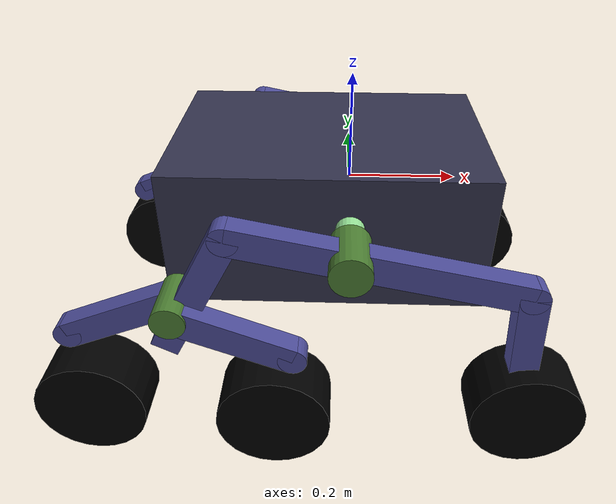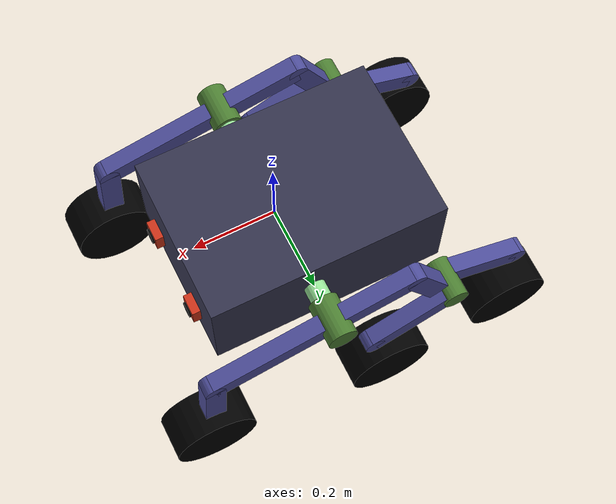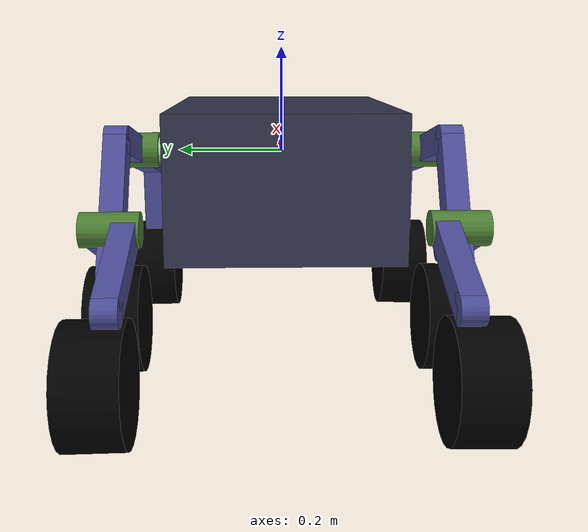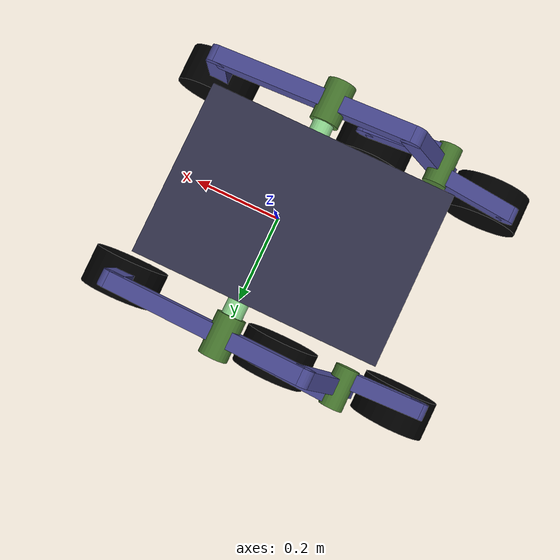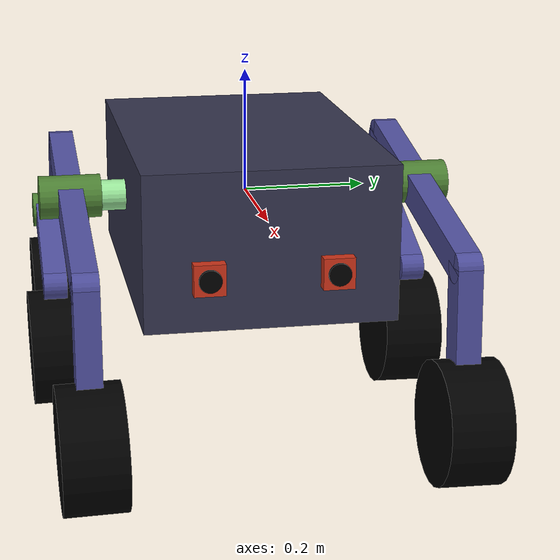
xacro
<?xml version="1.0"?>
<robot xmlns:xacro="http://www.ros.org/wiki/xacro" name="rover">

    <gazebo>
        <plugin name="gazebo_ros_control" filename="libgazebo_ros_pkgs.so">
            <robotNamespace>rover</robotNamespace>
        </plugin>
    </gazebo>

    <xacro:include filename="rocker-bogie/__rocker-bogie.xacro"/>
    <xacro:include filename="base/__base.xacro"/>

</robot>

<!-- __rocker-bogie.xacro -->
<robot xmlns:xacro="http://www.ros.org/wiki/xacro" name="rocker-bogie">

<!-- INCLUDED FILES -->
    <xacro:include filename="rocker/__rocker.xacro"/>
    <xacro:include filename="bogie/__bogie.xacro"/>
    <xacro:include filename="suspension_beam.xacro"/>
    <xacro:include filename="wheel.xacro"/>

<!-- PROPERIES -->
    <!-- SUSPENSION PROPERTIES-->
    <xacro:property name="suspension_width" value=".580"/>

    <xacro:property name="bogie_x" value="-.292"/>
    <xacro:property name="bogie_y" value=" .000"/>
    <xacro:property name="bogie_z" value="-.100"/>

    <xacro:property name="wheel_f_x" value=" .319"/>
    <xacro:property name="wheel_f_y" value=" .000"/>
    <xacro:property name="wheel_f_z" value="-.305"/>

    <xacro:property name="wheel_m_x" value=" .165"/>
    <xacro:property name="wheel_m_y" value=" .020"/>
    <xacro:property name="wheel_m_z" value="-.205"/>

    <xacro:property name="wheel_b_x" value="-.165"/>
    <xacro:property name="wheel_b_y" value="0"/>
    <xacro:property name="wheel_b_z" value="-.205"/>

    <!-- WHEELS POSITIONS -->
    <xacro:property name="wheel_base_f" value=".550"/>
    <xacro:property name="wheel_base_m" value=".600"/>
    <xacro:property name="wheel_base_b" value=".500"/>

    <xacro:property name="h_wheel" value=".250"/>
    <xacro:property name="l_wheel_f" value=".305"/>

    <!-- CUSTOM SIM PROPS -->
    <xacro:property name="h_bogie" value=".170"/>
    <xacro:property name="l_bogie" value=".305"/>
    <xacro:property name="l_wheel_m" value=".200"/>
    <xacro:property name="l_wheel_b" value=".200"/>

    <!-- ELEMENTS DIAMETERS -->
    <xacro:property name="suspension_beam_length" value=".600"/>
    <xacro:property name="suspension_beam_radius" value=".025"/>

    <xacro:property name="rocker_bearing_length" value=".100"/>
    <xacro:property name="rocker_bearing_radius" value=".035"/>

    <xacro:property name="bogie_bearing_length" value=".100"/>
    <xacro:property name="bogie_bearing_radius" value=".030"/>

    <xacro:property name="wheel_width" value=".100"/>
    <xacro:property name="wheel_radius" value=".100"/>

<!-- RELATIVE VARIABLES -->
    <xacro:property name="f_wheel_deviation" value="${(wheel_base_f - wheel_base_m)/2}"/>
    <xacro:property name="b_wheel_deviation" value="${(wheel_base_b - wheel_base_m)/2}"/>
    <xacro:property name="wheel_offset" value=".100"/>

<!-- MAIN LINK -->
    <xacro:suspension_beam name="suspension_beam"/>

<!-- SUSPENSION -->
    <xacro:rocker name="rocker_l" parent="suspension_beam" x="0" y="${suspension_width/2}"    z="0" side="1"/>  <!-- 1 = left -->
    <xacro:rocker name="rocker_r" parent="suspension_beam" x="0" y="${-suspension_width/2}"    z="0" side="-1"/> <!-- -1 = right -->

    <xacro:bogie name="bogie_l" parent="rocker_l_bearing" x="${bogie_x}" y="${bogie_y}"  z="${bogie_z}" side="1"/>
    <xacro:bogie name="bogie_r" parent="rocker_r_bearing" x="${bogie_x}" y="${bogie_y}"  z="${bogie_z}" side="-1"/>

<!-- WHEELS -->
    <xacro:wheel name="fl" parent="rocker_l_bearing" x="${wheel_f_x}" y="${+wheel_f_y}"  z="${wheel_f_z}" side="1"/>
    <xacro:wheel name="fr" parent="rocker_r_bearing" x="${wheel_f_x}" y="${-wheel_f_y}"  z="${wheel_f_z}" side="-1"/>

    <xacro:wheel name="ml" parent="bogie_l_bearing"  x="${wheel_m_x}" y="${+wheel_m_y}"  z="${wheel_m_z}" side="1"/>
    <xacro:wheel name="mr" parent="bogie_r_bearing"  x="${wheel_m_x}" y="${-wheel_m_y}"  z="${wheel_m_z}" side="-1"/>

    <xacro:wheel name="bl" parent="bogie_l_bearing"  x="${wheel_b_x}" y="${+wheel_b_y}"  z="${wheel_b_z}" side="1"/>
    <xacro:wheel name="br" parent="bogie_r_bearing"  x="${wheel_b_x}" y="${-wheel_b_y}"  z="${wheel_b_z}" side="-1"/>

<!-- MY DIFFERENTIAL PLUGIN -->
    <gazebo>
        <plugin name="differential_pid" filename="libDifferentialPID.so">
            <leftJoint>rocker_l_bearing_joint</leftJoint>
            <rightJoint>rocker_r_bearing_joint</rightJoint>
            <topic>/rover/differential_pid</topic>
            <Kp>1000</Kp>
            <Ki>0</Ki>
            <Kd>3000</Kd>
            <limit>10000</limit>
        </plugin>
    </gazebo>

</robot>

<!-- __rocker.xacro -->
<robot xmlns:xacro="http://www.ros.org/wiki/xacro" name="rocker">

<!-- INCLUDE -->
    <xacro:include filename="rocker_bearing.xacro"/>
    <xacro:include filename="rocker_link1.xacro"/>
    <xacro:include filename="rocker_link2.xacro"/>
    <xacro:include filename="rocker_link3.xacro"/>
    <xacro:include filename="rocker_link_diff.xacro"/>

<!-- PROPERTIES -->
    <xacro:property name="rocker_link1_length"      value=".500"/>
    <xacro:property name="rocker_link1_width"       value=".040"/>
    <xacro:property name="rocker_link1_height"      value=".050"/>
    <xacro:property name="rocker_link1_x"            value=".000"/>
    <xacro:property name="rocker_link1_y"            value=".000"/>
    <xacro:property name="rocker_link1_z"            value=".000"/>
    <xacro:property name="rocker_link1_offset_x"    value=".050"/>
    <xacro:property name="rocker_link1_offset_y"    value=".000"/>
    <xacro:property name="rocker_link1_offset_z"    value=".000"/>
    <xacro:property name="rocker_link1_pitch"        value="-.2"/>

    <xacro:property name="rocker_link2_length"      value=".250"/>
    <xacro:property name="rocker_link2_width"       value=".040"/>
    <xacro:property name="rocker_link2_height"      value=".050"/>
    <xacro:property name="rocker_link2_x"            value="${-rocker_link1_length/2+rocker_link1_offset_x}"/>
    <xacro:property name="rocker_link2_y"            value=".000"/>
    <xacro:property name="rocker_link2_z"            value=".000"/>
    <xacro:property name="rocker_link2_offset_x"    value="${-rocker_link2_length/2}"/>
    <xacro:property name="rocker_link2_offset_y"    value=".000"/>
    <xacro:property name="rocker_link2_offset_z"    value=".000"/>
    <xacro:property name="rocker_link2_pitch"        value="1.28"/>

    <xacro:property name="rocker_link3_length"      value=".190"/>
    <xacro:property name="rocker_link3_width"       value=".040"/>
    <xacro:property name="rocker_link3_height"      value=".050"/>
    <xacro:property name="rocker_link3_x"            value="${rocker_link1_length/2+rocker_link1_offset_x}"/>
    <xacro:property name="rocker_link3_y"            value=".000"/>
    <xacro:property name="rocker_link3_z"            value=".000"/>
    <xacro:property name="rocker_link3_offset_x"    value="${rocker_link3_length/2}"/>
    <xacro:property name="rocker_link3_offset_y"    value=".000"/>
    <xacro:property name="rocker_link3_offset_z"    value=".000"/>
    <xacro:property name="rocker_link3_pitch"        value="-1.31"/>

    <xacro:property name="link_diff_lenght" value=".100"/>
    <xacro:property name="link_diff_radius" value=".005"/>

<!-- LINKS -->

    <xacro:macro name="rocker" params="name parent x y z side">

        <xacro:rocker_bearing name="${name}_bearing" parent="${parent}" x="${x}" y="${y}" z="${z}" side="${side}"/>

        <xacro:rocker_link1 name="${name}_link1" parent="${name}_bearing"
            x="${rocker_link1_x}" y="${-rocker_link1_y}"  z="${rocker_link1_z}"
            pitch="${-rocker_link1_pitch}"/>

        <xacro:rocker_link2 name="${name}_link2" parent="${name}_link1"
            x="${rocker_link2_x}" y="${-rocker_link2_y}"  z="${rocker_link2_z}"
            pitch="${-rocker_link2_pitch}"/>

        <xacro:rocker_link3 name="${name}_link3" parent="${name}_link1"
            x="${rocker_link3_x}" y="${-rocker_link3_y}"  z="${rocker_link3_z}"
            pitch="${-rocker_link3_pitch}"/>

    </xacro:macro>
</robot>

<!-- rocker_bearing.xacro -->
<robot xmlns:xacro="http://www.ros.org/wiki/xacro" name="rocker">

<!-- GEOMETRY -->
    <xacro:macro name="rocker_geometry">
        <origin rpy="1.57075 0 0"/>
        <geometry>
            <cylinder length="${rocker_bearing_length}" radius="${rocker_bearing_radius}"/>
        </geometry>
    </xacro:macro>

<!-- MATERIAL -->
    <xacro:macro name="rocker_material">
        <material name="dark_green">
            <color rgba=".3 .5 .2 1"/>
        </material>
    </xacro:macro>

<!-- LINK -->
    <xacro:macro name="rocker_bearing" params="name parent x y z side">
        <link name="${name}">
            <visual>
                <xacro:rocker_geometry/>
                <xacro:rocker_material/>
            </visual>
            <collision>
                <xacro:rocker_geometry/>
            </collision>
            <inertial>
                <mass value="3"/>
                <xacro:if value="${side == 1}"> <!-- LEFT-->
                    <origin xyz="0.247725 0.035298 -0.066751" rpy="0 0 0"/>
                    <inertia ixx="0.050813" ixy="0.009439" ixz="-0.021963" iyy="0.135830" iyz="0.004023" izz="0.097893"/>
                </xacro:if>
                <xacro:if value="${side == -1}"> <!-- RIGHT-->
                    <origin xyz="0.247727 -0.035298 -0.066751" rpy="0 0 0"/>
                    <inertia ixx="0.050813" ixy="-0.009439" ixz="-0.021960" iyy="0.135831" iyz="-0.004023" izz="0.097894"/>
                </xacro:if>
            </inertial>
        </link>

            <joint name="${name}_joint" type="revolute">
                <parent link="${parent}"/>
                <child link="${name}"/>
                <origin rpy="0 0 0" xyz="${x} ${y} ${z}"/>
                <axis xyz="0 1 0"/>
                <limit effort="10000" velocity="1" lower="-0.5" upper="0.5"/>
                <dynamics damping="2" friction="0"/>
            </joint>

            <gazebo reference="${name}">
                <mu1> .2 </mu1>
                <mu2> .2 </mu2>
                <material> Gazebo/Grey </material>
                <selfCollide> True </selfCollide>
            </gazebo>

    </xacro:macro>

</robot>

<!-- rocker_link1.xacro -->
<robot xmlns:xacro="http://www.ros.org/wiki/xacro" name="rocker_link1">

<!-- GEOMETRY -->
    <xacro:macro name="rocker_link1_geometry_1">
        <origin rpy="0 0 0" xyz="${rocker_link1_offset_x} ${rocker_link1_offset_y} ${rocker_link1_offset_z}" />
        <geometry>
            <box size="${rocker_link1_length} ${rocker_link1_width} ${rocker_link1_height}"/>
        </geometry>
    </xacro:macro>

    <xacro:macro name="rocker_link1_geometry_2">
        <origin rpy="1.57075 0 0" xyz="${-rocker_link1_length/2+rocker_link1_offset_x} ${rocker_link1_offset_y} ${rocker_link1_offset_z}" />
        <geometry>
            <cylinder length="${rocker_link1_width}" radius="${rocker_link1_height/2}"/>
        </geometry>
    </xacro:macro>

    <xacro:macro name="rocker_link1_geometry_3">
        <origin rpy="1.57075 0 0" xyz="${rocker_link1_length/2+rocker_link1_offset_x} ${rocker_link1_offset_y} ${rocker_link1_offset_z}" />
        <geometry>
            <cylinder length="${rocker_link1_width}" radius="${rocker_link1_height/2}"/>
        </geometry>
    </xacro:macro>

<!-- MATERIAL -->
    <xacro:macro name="rocker_link1_material">
        <material name="light_blue">
            <color rgba=".3 .3 .6 1"/>
        </material>
    </xacro:macro>

<!-- LINK -->
    <xacro:macro name="rocker_link1" params="name parent x y z pitch">
        <link name="${name}">
            <visual>
                <xacro:rocker_link1_geometry_1/>
                <xacro:rocker_link1_material/>
            </visual>
            <visual>
                <xacro:rocker_link1_geometry_2/>
                <xacro:rocker_link1_material/>
            </visual>
            <visual>
                <xacro:rocker_link1_geometry_3/>
                <xacro:rocker_link1_material/>
            </visual>
            <collision>
                <xacro:rocker_link1_geometry_1/>
            </collision>
            <collision>
                <xacro:rocker_link1_geometry_2/>
            </collision>
            <collision>
                <xacro:rocker_link1_geometry_3/>
            </collision>
            <inertial>
                 <origin rpy="0 0 0" xyz="${rocker_link1_offset_x} ${rocker_link1_offset_y} ${rocker_link1_offset_z}" />
                 <mass value="0"/>
                 <inertia ixx="0" ixy="0" ixz="0" iyy="0" iyz="0" izz="0"/>
            </inertial>
        </link>
        <gazebo reference="${name}">
            <mu1> .2 </mu1>
            <mu2> .2 </mu2>
            <material> Gazebo/Blue </material>
            <selfCollide>True</selfCollide>
        </gazebo>

        <joint name="${name}_joint" type="fixed">
            <parent link="${parent}"/>
            <child link="${name}"/>
            <origin rpy="0 ${pitch} 0" xyz="${x} ${y} ${z}"/>
        </joint>

    </xacro:macro>
</robot>

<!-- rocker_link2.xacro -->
<robot xmlns:xacro="http://www.ros.org/wiki/xacro" name="rocker_link2">

<!-- GEOMETRY -->
    <xacro:macro name="rocker_link2_geometry">
        <origin rpy="0 0 0" xyz="${rocker_link2_offset_x} ${rocker_link2_offset_y} ${rocker_link2_offset_z} " />
        <geometry>
            <box size="${rocker_link2_length} ${rocker_link2_width} ${rocker_link2_height}"/>
        </geometry>
    </xacro:macro>

<!-- MATERIAL -->
    <xacro:macro name="rocker_link2_material">
        <material name="light_blue">
            <color rgba=".3 .3 .6 1"/>
        </material>
    </xacro:macro>

<!-- LINK -->
    <xacro:macro name="rocker_link2" params="name parent x y z pitch">
        <link name="${name}">
            <visual>
                <xacro:rocker_link2_geometry/>
                <xacro:rocker_link2_material/>
            </visual>x
            <collision>
                <xacro:rocker_link2_geometry/>
            </collision>
            <inertial>
                 <origin rpy="0 0 0" xyz="${rocker_link2_offset_x} ${rocker_link2_offset_y} ${rocker_link2_offset_z}" />
                 <mass value="0"/>
                 <inertia ixx="0" ixy="0" ixz="0" iyy="0" iyz="0" izz="0"/>
            </inertial>
        </link>
        <gazebo reference="${name}">
            <mu1> .2 </mu1>
            <mu2> .2 </mu2>
            <material> Gazebo/Blue </material>
            <selfCollide>True</selfCollide>
        </gazebo>

        <joint name="${name}_joint" type="fixed">
            <parent link="${parent}"/>
            <child link="${name}"/>
            <origin rpy="0 ${pitch} 0" xyz="${x} ${y} ${z}"/>
        </joint>

    </xacro:macro>
</robot>

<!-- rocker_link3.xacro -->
<robot xmlns:xacro="http://www.ros.org/wiki/xacro" name="rocker_link3">

<!-- GEOMETRY -->
    <xacro:macro name="rocker_link3_geometry_1">
        <origin rpy="0 0 0" xyz="${rocker_link3_offset_x} ${rocker_link3_offset_y} ${rocker_link3_offset_z} " />
        <geometry>
            <box size="${rocker_link3_length} ${rocker_link3_width} ${rocker_link3_height}"/>
        </geometry>
    </xacro:macro>

    <xacro:macro name="rocker_link3_geometry_2">
        <origin rpy="1.57075 0 0" xyz="${rocker_link3_length/2 + rocker_link3_offset_x} ${rocker_link3_offset_y} ${rocker_link3_offset_z}" />
        <geometry>
            <cylinder length="${rocker_link3_width}" radius="${rocker_link3_height/2}"/>
        </geometry>
    </xacro:macro>

<!-- MATERIAL -->
    <xacro:macro name="rocker_link3_material">
        <material name="light_blue">
            <color rgba=".3 .3 .6 1"/>
        </material>
    </xacro:macro>

<!-- LINK -->
    <xacro:macro name="rocker_link3" params="name parent x y z pitch">
        <link name="${name}">
            <visual>
                <xacro:rocker_link3_geometry_1/>
                <xacro:rocker_link3_material/>
            </visual>
            <visual>
                <xacro:rocker_link3_geometry_2/>
                <xacro:rocker_link3_material/>
            </visual>
            <collision>
                <xacro:rocker_link3_geometry_1/>
            </collision>
            <collision>
                <xacro:rocker_link3_geometry_2/>
            </collision>
            <inertial>
                 <origin rpy="0 0 0" xyz="${rocker_link3_offset_x} ${rocker_link3_offset_y} ${rocker_link3_offset_z} " />
                 <mass value="2"/>
                 <inertia ixx=".003" ixy="0.000" ixz="0.000" iyy=".003" iyz="0.000" izz=".003"/>
            </inertial>
        </link>
        <gazebo reference="${name}">
            <mu1> .2 </mu1>
            <mu2> .2 </mu2>
            <material> Gazebo/Blue </material>
            <selfCollide>True</selfCollide>
        </gazebo>

        <joint name="${name}_joint" type="fixed">
            <parent link="${parent}"/>
            <child link="${name}"/>
            <origin rpy="0 ${pitch} 0" xyz="${x} ${y} ${z}"/>
        </joint>

    </xacro:macro>
</robot>

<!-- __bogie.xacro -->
<robot xmlns:xacro="http://www.ros.org/wiki/xacro" name="bogie">

<!-- INCLUDE -->
    <xacro:include filename="bogie_bearing.xacro"/>
    <xacro:include filename="bogie_link1.xacro"/>
    <xacro:include filename="bogie_link2.xacro"/>

<!-- PROPERTIES -->
    <xacro:property name="bogie_link1_length"      value=".215"/>
    <xacro:property name="bogie_link1_width"       value=".040"/>
    <xacro:property name="bogie_link1_height"      value=".050"/>
    <xacro:property name="bogie_link1_x"            value=".000"/>
    <xacro:property name="bogie_link1_y"            value=".000"/>
    <xacro:property name="bogie_link1_z"            value=".000"/>
    <xacro:property name="bogie_link1_offset_x"    value="${bogie_link1_length/2}"/>
    <xacro:property name="bogie_link1_offset_y"    value=".025"/>
    <xacro:property name="bogie_link1_offset_z"    value=".000"/>
    <xacro:property name="bogie_link1_pitch"        value="-0.38"/>

    <xacro:property name="bogie_link2_length"      value=".215"/>
    <xacro:property name="bogie_link2_width"       value=".040"/>
    <xacro:property name="bogie_link2_height"      value=".050"/>
    <xacro:property name="bogie_link2_x"            value=".000"/>
    <xacro:property name="bogie_link2_y"            value=".000"/>
    <xacro:property name="bogie_link2_z"            value=".000"/>
    <xacro:property name="bogie_link2_offset_x"    value="${-bogie_link2_length/2}"/>
    <xacro:property name="bogie_link2_offset_y"    value="-.025"/>
    <xacro:property name="bogie_link2_offset_z"    value=".000"/>
    <xacro:property name="bogie_link2_pitch"        value="0.38"/>

<!-- LINKS -->
    <xacro:macro name="bogie" params="name parent x y z side">

        <xacro:bogie_bearing name="${name}_bearing" parent="${parent}" x="${x}" y="${y}" z="${z}" side="${side}"/>

        <xacro:bogie_link1 name="${name}_link1" parent="${name}_bearing"
            x="${bogie_link1_x}" y="${-bogie_link1_y}"  z="${bogie_link1_z}"
            pitch="${-bogie_link1_pitch}" side="${side}"/>

        <xacro:bogie_link2 name="${name}_link2" parent="${name}_bearing"
            x="${bogie_link2_x}" y="${-bogie_link2_y}"  z="${bogie_link2_z}"
            pitch="${-bogie_link2_pitch}" side="${side}"/>

    </xacro:macro>

</robot>

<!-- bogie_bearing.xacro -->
<robot xmlns:xacro="http://www.ros.org/wiki/xacro" name="bogie_bearing">

<!-- GEOMETRY -->
    <xacro:macro name="bogie_bearing_geometry">
        <origin rpy="1.57075 0 0"/>
        <geometry>
            <cylinder length="${bogie_bearing_length}" radius="${bogie_bearing_radius}"/>
        </geometry>
    </xacro:macro>

<!-- MATERIAL -->
    <xacro:macro name="bogie_bearing_material">
        <material name="dark_green">
            <color rgba=".3 .5 .2 1"/>
        </material>
    </xacro:macro>

<!-- LINK -->
    <xacro:macro name="bogie_bearing" params="name parent x y z side">
        <link name="${name}">
            <visual>
                <xacro:bogie_bearing_geometry/>
                <xacro:bogie_bearing_material/>
            </visual>
            <collision>
                <xacro:bogie_bearing_geometry/>
            </collision>
            <inertial>
                <mass value="6.143721"/>
                <xacro:if value="${side == 1}"> <!-- LEFT-->
                    <origin xyz="-0.000010 0.045682 0.012347" rpy="0 0 0"/>
                    <inertia ixx="0.082737" ixy="0.015401" ixz="-0.000002" iyy="0.236740" iyz="0.013790" izz="0.176983"/>
                </xacro:if>
                <xacro:if value="${side == -1}"> <!-- RIGHT-->
                    <origin xyz="-0.000007 -0.045682 0.012347" rpy="0 0 0"/>
                    <inertia ixx="0.082737" ixy="-0.015402" ixz="0.000003" iyy="0.236740" iyz="-0.013790" izz="0.176983"/>
                </xacro:if>
            </inertial>
        </link>

            <joint name="${name}_joint" type="revolute">
                <parent link="${parent}"/>
                <child link="${name}"/>
                <origin rpy="0 0 0" xyz="${x} ${y} ${z}"/>
                <axis xyz="0 1 0"/>
                <limit effort="1" velocity="1" lower="-0.5" upper="0.5"/>
                <dynamics damping="1"/>
            </joint>

            <gazebo reference="${name}">
                <mu1> .2 </mu1>
                <mu2> .2 </mu2>
                <material> Gazebo/Grey </material>
                <selfCollide> True </selfCollide>
            </gazebo>

            <transmission name="${name}_transmission">
                <type>transmission_interface/SimpleTransmission</type>
                <joint name="${name}_joint">
                    <hardwareInterface>EffortJointInterface</hardwareInterface>
                </joint>
                <actuator name="${name}_motor">
                    <hardwareInterface>EffortJointInterface</hardwareInterface>
                    <mechanicalReduction>1</mechanicalReduction>
                </actuator>
            </transmission>

    </xacro:macro>

</robot>

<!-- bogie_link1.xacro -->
<robot xmlns:xacro="http://www.ros.org/wiki/xacro" name="bogie_link1">

<!-- GEOMETRY -->
    <xacro:macro name="bogie_link1_geometry_1">
        <origin rpy="0 0 0" xyz="${bogie_link1_offset_x} ${bogie_link1_offset_y*side} ${bogie_link1_offset_z}" />
        <geometry>
            <box size="${bogie_link1_length} ${bogie_link1_width} ${bogie_link1_height}"/>
        </geometry>
    </xacro:macro>

    <xacro:macro name="bogie_link1_geometry_2" params="side">
        <origin rpy="1.57075 0 0" xyz="${bogie_link1_length/2 + bogie_link1_offset_x} ${bogie_link1_offset_y*side} ${bogie_link1_offset_z}" />
        <geometry>
            <cylinder length="${bogie_link1_width}" radius="${bogie_link1_height/2}"/>
        </geometry>
    </xacro:macro>

<!-- MATERIAL -->
    <xacro:macro name="bogie_link1_material">
        <material name="light_blue">
            <color rgba=".3 .3 .6 1"/>
        </material>
    </xacro:macro>

<!-- LINK -->
    <xacro:macro name="bogie_link1" params="name parent x y z pitch side">
        <link name="${name}">
            <visual>
                <xacro:bogie_link1_geometry_1/>
                <xacro:bogie_link1_material/>
            </visual>
            <visual>
                <xacro:bogie_link1_geometry_2 side="${side}"/>
                <xacro:bogie_link1_material/>
            </visual>
            <collision>
                <xacro:bogie_link1_geometry_1/>
            </collision>
            <collision>
                <xacro:bogie_link1_geometry_2 side="${side}"/>
            </collision>

            <inertial>
                 <origin rpy="0 0 0" xyz="${bogie_link1_offset_x} ${bogie_link1_offset_y*side} ${bogie_link1_offset_z}" />
                 <mass value="2"/>
                 <inertia ixx=".003" ixy="0.000" ixz="0.000" iyy=".003" iyz="0.000" izz=".003"/>
            </inertial>
        </link>
        <gazebo reference="${name}">
            <mu1> .2 </mu1>
            <mu2> .2 </mu2>
            <material> Gazebo/Blue </material>
            <selfCollide>True</selfCollide>
        </gazebo>

        <joint name="${name}_joint" type="fixed">
            <parent link="${parent}"/>
            <child link="${name}"/>
            <origin rpy="0 ${pitch} 0" xyz="${x} ${y} ${z}"/>
        </joint>

    </xacro:macro>
</robot>

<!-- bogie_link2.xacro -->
<robot xmlns:xacro="http://www.ros.org/wiki/xacro" name="bogie_link2">

<!-- GEOMETRY -->
    <xacro:macro name="bogie_link2_geometry_1">
        <origin rpy="0 0 0" xyz="${bogie_link2_offset_x} ${bogie_link2_offset_y*side} ${bogie_link2_offset_z}" />
        <geometry>
            <box size="${bogie_link2_length} ${bogie_link2_width} ${bogie_link2_height}"/>
        </geometry>
    </xacro:macro>

    <xacro:macro name="bogie_link2_geometry_2" params="side">
        <origin rpy="1.57075 0 0" xyz="${-bogie_link2_length/2 + bogie_link2_offset_x} ${bogie_link2_offset_y*side} ${bogie_link2_offset_z}" />
        <geometry>
            <cylinder length="${bogie_link2_width}" radius="${bogie_link2_height/2}"/>
        </geometry>
    </xacro:macro>

<!-- MATERIAL -->
    <xacro:macro name="bogie_link2_material">
        <material name="light_blue">
            <color rgba=".3 .3 .6 1"/>
        </material>
    </xacro:macro>

<!-- LINK -->
    <xacro:macro name="bogie_link2" params="name parent x y z pitch side">
        <link name="${name}">
            <visual>
                <xacro:bogie_link2_geometry_1/>
                <xacro:bogie_link2_material/>
            </visual>
            <visual>
                <xacro:bogie_link2_geometry_2 side="${side}"/>
                <xacro:bogie_link2_material/>
            </visual>
            <collision>
                <xacro:bogie_link2_geometry_1/>
            </collision>
            <collision>
                <xacro:bogie_link2_geometry_2 side="${side}"/>
            </collision>
            <inertial>
                 <origin rpy="0 0 0" xyz="${bogie_link2_offset_x} ${bogie_link2_offset_y*side} ${bogie_link2_offset_z}" />
                 <mass value="0"/>
                 <inertia ixx="0" ixy="0" ixz="0" iyy="0" iyz="0" izz="0"/>
            </inertial>
        </link>
        <gazebo reference="${name}">
            <mu1> .2 </mu1>
            <mu2> .2 </mu2>
            <material> Gazebo/Blue </material>
            <selfCollide>True</selfCollide>
        </gazebo>

        <joint name="${name}_joint" type="fixed">
            <parent link="${parent}"/>
            <child link="${name}"/>
            <origin rpy="0 ${pitch} 0" xyz="${x} ${y} ${z}"/>
        </joint>

    </xacro:macro>
</robot>

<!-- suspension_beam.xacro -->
<robot xmlns:xacro="http://www.ros.org/wiki/xacro" name="suspension_beam">

<!-- GEOMETRY -->
    <xacro:macro name="suspension_beam_geometry">
        <origin rpy="1.57075 0 0" xyz="0 0 0"/>
        <geometry>
            <cylinder length="${suspension_beam_length}" radius="${suspension_beam_radius}"/>
        </geometry>
    </xacro:macro>

<!-- MATERIAL -->
    <xacro:macro name="suspension_beam_material">
        <material name="light_green">
            <color rgba=".6 .9 .6 1"/>
        </material>
    </xacro:macro>

<!-- LINK -->
    <xacro:macro name="suspension_beam" params="name">

    <!-- DUMMY LINK -->
        <link name="base_link">
        </link>
        <joint name="base_jonit" type="fixed">
            <parent link="base_link"/>
            <child link="${name}"/>
        </joint>

    <!-- MAIN LINK -->
        <link name="${name}">
            <visual>
                <xacro:suspension_beam_geometry/>
                <xacro:suspension_beam_material/>
            </visual>
            <collision>
                <xacro:suspension_beam_geometry/>
            </collision>
            <inertial>
                <mass value="0.001"/>
                <inertia ixx="0.000005" ixy="0" ixz="0" iyy="0.000005" iyz="0" izz="0.000005"/>
            </inertial>
        </link>

        <gazebo reference="base_link">
            <mu1> .2 </mu1>
            <mu2> .2 </mu2>
            <material> Gazebo/Wh </material>
            <selfCollide> True </selfCollide>
        </gazebo>

    </xacro:macro>

</robot>

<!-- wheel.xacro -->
<robot xmlns:xacro="http://www.ros.org/wiki/xacro" name="wheel">

<!-- GEOMETRY -->
    <xacro:macro name="wheel_geometry">
        <origin rpy="1.57075 0 0"/>
        <geometry>
            <cylinder length="${wheel_width}" radius="${wheel_radius}"/>
        </geometry>
    </xacro:macro>

<!-- MATERIAL -->
    <xacro:macro name="wheel_material">
        <material name="black">
            <color rgba=".0 .0 .0 1"/>
        </material>
    </xacro:macro>

<!-- LINK -->
    <xacro:macro name="wheel" params="name parent x y z side">

        <link name="wheel_${name}">
            <visual>
                <xacro:wheel_geometry/>
                <xacro:wheel_material/>
            </visual>
            <collision>
                <xacro:wheel_geometry/>
            </collision>
            <inertial>
                 <mass value="1.67"/>
                 <origin xyz="0 0 0" rpy="0 0 0"/>
                 <inertia ixx=".007228" ixy="0" ixz="0" iyy=".011596" iyz="0" izz=".007228"/>
            </inertial>
        </link>

        <joint name="wheel_${name}_joint" type="continuous">
            <parent link="${parent}"/>
            <child link="wheel_${name}"/>
            <origin rpy="${-side*0.02} 0 0" xyz="${x} ${y} ${z}"/>
            <axis xyz="0 1 0"/>
            <limit effort="100" velocity="10"/>
            <dynamics damping="1"/>
        </joint>

        <gazebo reference="wheel_${name}">
            <mu1 value="0.5"/>
            <mu2 value="0.5"/>
            <material value="Gazebo/Black"/>
            <selfCollide value="True"/>
        </gazebo>

        <gazebo>
            <plugin name="wheel_${name}_joint_limiter" filename="libJointLimiter.so">
                <joint>wheel_${name}_joint</joint>
                <topic>/rover/wheel_${name}_velocity_controller</topic>
                <lower>-9999999</lower>
                <upper>9999999</upper>
            </plugin>
        </gazebo>
        <gazebo>
            <plugin name="wheel_${name}_controller" filename="libControllerPID.so">
                <joint>wheel_${name}_joint</joint>
                <topic>/rover/wheel_${name}_velocity_controller</topic>
                <Kp>2</Kp>
                <Ki>0.1</Ki>
                <Kd>0.1</Kd>
                <limit>100</limit>
            </plugin>
        </gazebo>

    </xacro:macro>
</robot>

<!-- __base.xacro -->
<robot xmlns:xacro="http://www.ros.org/wiki/xacro" name="rover">

<!-- INCLUDED FILES -->
    <xacro:include filename="main_body.xacro"/>
    <xacro:include filename="tower_yaw.xacro"/>
    <xacro:include filename="tower_pitch.xacro"/>
    <xacro:include filename="../sensors/camera.xacro"/>

<!-- PROPERTIES -->

    <xacro:property name="body_length" value=".570"/>
    <xacro:property name="body_width" value=".400"/>
    <xacro:property name="body_height" value=".250"/>

    <xacro:property name="body_translation_x" value="-.040"/>
    <xacro:property name="body_translation_z" value="-.0325"/>

    <xacro:property name="tower_pose_x" value="${-body_length/2 - +0.05}"/>
    <xacro:property name="tower_pose_y" value=".160"/>
    <xacro:property name="tower_pose_z" value="${body_height/2 + tower_yaw_height/2}"/>

    <xacro:property name="tower_yaw_height" value=".400"/>
    <xacro:property name="tower_yaw_radius" value=".025"/>

    <xacro:property name="tower_pitch_length" value=".100"/>
    <xacro:property name="tower_pitch_width" value=".150"/>
    <xacro:property name="tower_pitch_height" value=".050"/>

<!-- BODY -->
    <xacro:main_body name="main_body" parent="suspension_beam" x="${body_translation_x}" y="0" z="${body_translation_z}"/>

<!--TOWER -->

<!-- SENSORS -->
    <xacro:camera_link name="camera1" parent="main_body" x="${body_length/2 + camera_x/2 + body_translation_x}" y=".100" z="-.070" pitch="0"/>
    <xacro:camera_link name="camera2" parent="main_body" x="${body_length/2 + camera_x/2 + body_translation_x}" y="-.100" z="-.070" pitch="0"/>

</robot>

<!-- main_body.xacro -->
<robot xmlns:xacro="http://www.ros.org/wiki/xacro" name="main_body">

<!-- GEOMETRY -->
    <xacro:macro name="main_body_geometry_1">
        <origin rpy="0 0 0" xyz="${x} ${y} ${z}"/>
        <geometry>
            <box size="${body_length} ${body_width} ${body_height}"/>
        </geometry>
    </xacro:macro>

<!-- MATERIAL -->
    <xacro:macro name="main_body_material">
        <material name="dark_gray">
            <color rgba=".2 .2 .3 1"/>
        </material>
    </xacro:macro>

<!-- LINK -->
    <xacro:macro name="main_body" params="name parent x y z">

    <!-- MAIN LINK -->
        <link name="${name}">
            <visual>
                <xacro:main_body_geometry_1/>
                <xacro:main_body_material/>
            </visual>
            <collision>
                <xacro:main_body_geometry_1/>
            </collision>
    <!-- BOXES FOR STONES -->

            <inertial>
                 <mass value="40"/>
                 <origin rpy="0 0 0" xyz="0 0 -.2"/>
                 <inertia ixx=".1" ixy="0.001" ixz="0.001" iyy=".1" iyz="0.001" izz=".1"/>
            </inertial>
        </link>

        <gazebo reference="${name}">
            <mu1> .2 </mu1>
            <mu2> .2 </mu2>
            <material> Gazebo/Orange </material>
            <selfCollide> True </selfCollide>
        </gazebo>

        <joint name="${name}_joint" type="fixed">
            <parent link="${parent}"/>
            <child link="${name}"/>
            <origin rpy="0 0 0" xyz="0 0 0"/>
        </joint>
        <gazebo reference="${name}_joint">
            <stopCfm>0.8</stopCfm>
            <stopErp>0.5</stopErp>
            <provideFeedback>true</provideFeedback>
            <implicitSpringDamper>true</implicitSpringDamper>
            <fudgeFactor>0.0</fudgeFactor>
        </gazebo>

    </xacro:macro>

</robot>

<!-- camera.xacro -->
<robot xmlns:xacro="http://www.ros.org/wiki/xacro" name="camera">

<!-- DIMMENSIONS -->
    <xacro:property name="camera_x" value=".02"/>
    <xacro:property name="camera_y" value=".05"/>
    <xacro:property name="camera_z" value=".05"/>

    <xacro:property name="camera_lens_radius" value=".018"/>
    <xacro:property name="camera_lens_length" value=".01"/>

<!-- GEOMETRY -->
    <xacro:macro name="camera_geometry_1">
        <origin rpy="0 0 0" xyz="0 0 0" />
        <geometry>
            <box size="${camera_x} ${camera_y} ${camera_z}"/>
        </geometry>
    </xacro:macro>

    <xacro:macro name="camera_geometry_2">
        <origin rpy="0 0 0" xyz="0 0 0" />
        <geometry>
            <cylinder radius="${camera_lens_radius}" length="${camera_lens_length}"/>
        </geometry>
    </xacro:macro>

<!-- MATERIAL -->
    <xacro:macro name="camera_material_1">
        <material name="Red">
            <color rgba=".8 .2 .1 1"/>
        </material>
    </xacro:macro>

    <xacro:macro name="camera_material_2">
        <material name="Black">
            <color rgba="0 0 0 1"/>
        </material>
    </xacro:macro>

<!-- CAMERA GAZEBO PLUGIN -->
    <xacro:macro name="camera_plugin" params="name width height">
        <gazebo reference="${name}">
            <sensor type="camera" name="${name}">
                <update_rate> 10.0 </update_rate>
                <camera name="{name}" >
                    <horizontal_fov>2</horizontal_fov>
                    <image>
                        <width>${width}</width>
                        <height>${height}</height>
                        <format>B8G8R8</format>
                    </image>
                    <clip>
                        <near>0.02</near>
                        <far>300</far>
                    </clip>
                    <noise>
                        <type>gaussian</type>
                        <mean>0.0</mean>
                        <stddev>0.007</stddev>
                    </noise>
                </camera>

                <plugin name="camera_controller" filename="libgazebo_ros_camera.so">
                    <alwaysOn>True</alwaysOn>
                    <updateRate>0.0</updateRate>
                    <cameraName>rover/${name}</cameraName>
                    <imageTopicName>image_raw</imageTopicName>
                    <cameraInfoTopicName>camera_info</cameraInfoTopicName>
                    <frameName>${name}_lens</frameName>
                    <hackBaseline>0.07</hackBaseline>
                    <distortionK1>0.0</distortionK1>
                    <distortionK2>0.0</distortionK2>
                    <distortionK3>0.0</distortionK3>
                    <distortionT1>0.0</distortionT1>
                    <distortionT2>0.0</distortionT2>
                </plugin>

            </sensor>
        </gazebo>
    </xacro:macro>

<!-- LINK -->
    <xacro:macro name="camera_link" params="name parent x y z pitch">

        <!--CAMERA BOARD -->

        <link name="${name}">
            <visual>
                <xacro:camera_geometry_1/>
                <xacro:camera_material_1/>
            </visual>
            <collision>
                <xacro:camera_geometry_1/>
            </collision>
            <inertial>
                 <mass value=".01"/>
                 <inertia ixx=".00000003" ixy="0" ixz="0" iyy=".00000003" iyz="0" izz=".00000003"/>
            </inertial>
        </link>

        <joint name="${name}_joint" type="fixed">
            <parent link="${parent}"/>
            <child link="${name}"/>
            <origin rpy="0 ${pitch} 0" xyz="${x} ${y} ${z}"/>
        </joint>

        <gazebo reference="${name}">
            <mu1> .2 </mu1>
            <mu2> .2 </mu2>
            <material> Gazebo/Red </material>
            <selfCollide> false </selfCollide>
        </gazebo>

        <!--CAMERA LENS -->

        <link name="${name}_lens">
            <visual>
                <xacro:camera_geometry_2/>
                <xacro:camera_material_2/>
            </visual>
            <collision>
                <xacro:camera_geometry_2/>
            </collision>
            <inertial>
                 <mass value=".01"/>
                 <inertia ixx=".003" ixy="0" ixz="0" iyy=".003" iyz="0" izz=".003"/>
            </inertial>
        </link>

        <joint name="${name}_lens_joint" type="fixed">
            <parent link="${name}"/>
            <child link="${name}_lens"/>
            <origin rpy="-1.57075 0 -1.57075" xyz="${camera_x/2} 0 0"/>
        </joint>

        <gazebo reference="${name}_lens">
            <mu1> .2 </mu1>
            <mu2> .2 </mu2>
            <material> Gazebo/Black </material>
            <selfCollide> false </selfCollide>
        </gazebo>

        <xacro:camera_plugin name="${name}" width="320" height="240"/>

    </xacro:macro>
</robot>
